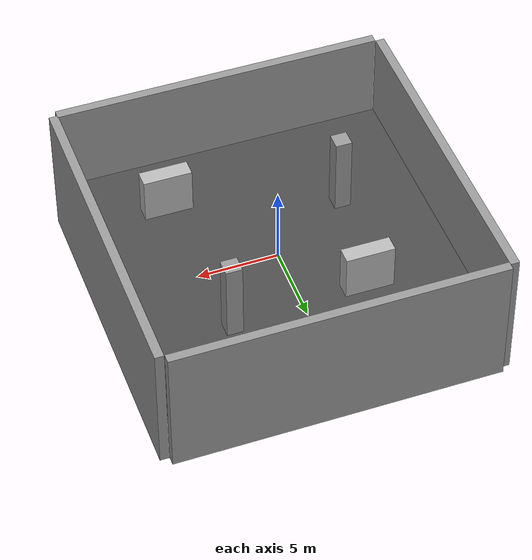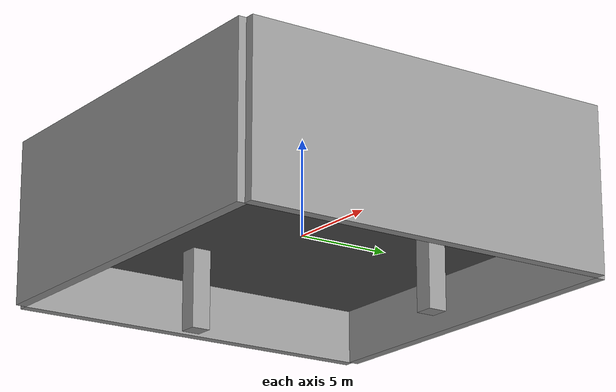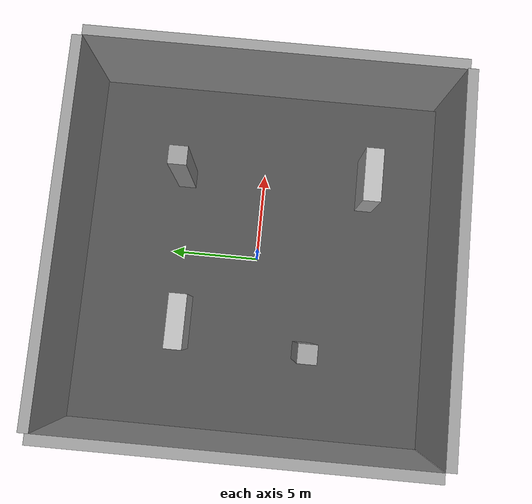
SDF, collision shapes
<?xml version='1.0'?>
<sdf version='1.6'>
  <model name='DQN_world_1'>
    <link name='link'>
      <pose frame=''>0 0 0 0 -0 0</pose>
      <self_collide>0</self_collide>
      <kinematic>0</kinematic>
      <visual name='visual'>
        <cast_shadows>0</cast_shadows>
        <geometry>
          <box>
            <size>20 20 0.1</size>
          </box>
        </geometry>
        <material>
          <script>
            <uri>model://asphalt_plane/materials/scripts</uri>
            <uri>model://asphalt_plane/materials/textures</uri>
            <name>vrc/asphalt</name>
          </script>
          <ambient>0.5 0.5 0.5 1</ambient>
          <diffuse>0.5 0.5 0.5 1</diffuse>
          <specular>0.2 0.2 0.2 1</specular>
          <emissive>0 0 0 1</emissive>
        </material>
        <pose frame=''>0 0 0 0 -0 0</pose>
        <transparency>0</transparency>
      </visual>
      <collision name='collision'>
        <laser_retro>0</laser_retro>
        <max_contacts>10</max_contacts>
        <pose frame=''>0 0 0 0 -0 0</pose>
        <geometry>
          <box>
            <size>20 20 0.1</size>
          </box>
        </geometry>
        <surface>
          <friction>
            <ode>
              <mu>1</mu>
              <mu2>1</mu2>
              <fdir1>0 0 0</fdir1>
              <slip1>0</slip1>
              <slip2>0</slip2>
            </ode>
            <torsional>
              <coefficient>1</coefficient>
              <patch_radius>0</patch_radius>
              <surface_radius>0</surface_radius>
              <use_patch_radius>1</use_patch_radius>
              <ode>
                <slip>0</slip>
              </ode>
            </torsional>
          </friction>
          <bounce>
            <restitution_coefficient>0</restitution_coefficient>
            <threshold>1e+06</threshold>
          </bounce>
          <contact>
            <collide_without_contact>0</collide_without_contact>
            <collide_without_contact_bitmask>1</collide_without_contact_bitmask>
            <collide_bitmask>1</collide_bitmask>
            <ode>
              <soft_cfm>0</soft_cfm>
              <soft_erp>0.2</soft_erp>
              <kp>1e+13</kp>
              <kd>1</kd>
              <max_vel>0.01</max_vel>
              <min_depth>0</min_depth>
            </ode>
            <bullet>
              <split_impulse>1</split_impulse>
              <split_impulse_penetration_threshold>-0.01</split_impulse_penetration_threshold>
              <soft_cfm>0</soft_cfm>
              <soft_erp>0.2</soft_erp>
              <kp>1e+13</kp>
              <kd>1</kd>
            </bullet>
          </contact>
        </surface>
      </collision>
    </link>
    <link name='link_0'>
      <pose frame=''>4.42205 4.53667 0.5 0 -0 0</pose>
      <inertial>
        <mass>9.33899</mass>
        <inertia>
          <ixx>68.6547</ixx>
          <ixy>0</ixy>
          <ixz>0</ixz>
          <iyy>68.6547</iyy>
          <iyz>0</iyz>
          <izz>1.5565</izz>
        </inertia>
        <pose frame=''>0 0 0 0 -0 0</pose>
      </inertial>
      <gravity>1</gravity>
      <self_collide>0</self_collide>
      <kinematic>0</kinematic>
      <visual name='visual'>
        <pose frame=''>0 0 0 0 -0 0</pose>
        <geometry>
          <box>
            <size>1 1 9.33898</size>
          </box>
        </geometry>
        <material>
          <lighting>1</lighting>
          <script>
            <uri>file://media/materials/scripts/gazebo.material</uri>
            <name>Gazebo/Grey</name>
          </script>
          <ambient>0.3 0.3 0.3 1</ambient>
          <diffuse>0.7 0.7 0.7 1</diffuse>
          <specular>0.01 0.01 0.01 1</specular>
          <emissive>0 0 0 1</emissive>
          <shader type='vertex'>
            <normal_map>__default__</normal_map>
          </shader>
        </material>
        <cast_shadows>1</cast_shadows>
        <transparency>0</transparency>
      </visual>
      <collision name='collision'>
        <laser_retro>0</laser_retro>
        <max_contacts>10</max_contacts>
        <pose frame=''>0 0 0 0 -0 0</pose>
        <geometry>
          <box>
            <size>1 1 9.33898</size>
          </box>
        </geometry>
        <surface>
          <friction>
            <ode>
              <mu>1</mu>
              <mu2>1</mu2>
              <fdir1>0 0 0</fdir1>
              <slip1>0</slip1>
              <slip2>0</slip2>
            </ode>
            <torsional>
              <coefficient>1</coefficient>
              <patch_radius>0</patch_radius>
              <surface_radius>0</surface_radius>
              <use_patch_radius>1</use_patch_radius>
              <ode>
                <slip>0</slip>
              </ode>
            </torsional>
          </friction>
          <bounce>
            <restitution_coefficient>0</restitution_coefficient>
            <threshold>1e+06</threshold>
          </bounce>
          <contact>
            <collide_without_contact>0</collide_without_contact>
            <collide_without_contact_bitmask>1</collide_without_contact_bitmask>
            <collide_bitmask>1</collide_bitmask>
            <ode>
              <soft_cfm>0</soft_cfm>
              <soft_erp>0.2</soft_erp>
              <kp>1e+13</kp>
              <kd>1</kd>
              <max_vel>0.01</max_vel>
              <min_depth>0</min_depth>
            </ode>
            <bullet>
              <split_impulse>1</split_impulse>
              <split_impulse_penetration_threshold>-0.01</split_impulse_penetration_threshold>
              <soft_cfm>0</soft_cfm>
              <soft_erp>0.2</soft_erp>
              <kp>1e+13</kp>
              <kd>1</kd>
            </bullet>
          </contact>
        </surface>
      </collision>
    </link>
    <link name='link_0_clone'>
      <pose frame=''>-5.06208 -2.97464 0.5 0 -0 0</pose>
      <inertial>
        <mass>9.33899</mass>
        <inertia>
          <ixx>68.6547</ixx>
          <ixy>0</ixy>
          <ixz>0</ixz>
          <iyy>68.6547</iyy>
          <iyz>0</iyz>
          <izz>1.5565</izz>
        </inertia>
        <pose frame=''>0 0 0 0 -0 0</pose>
      </inertial>
      <self_collide>0</self_collide>
      <kinematic>0</kinematic>
      <visual name='visual'>
        <pose frame=''>0 0 0 0 -0 0</pose>
        <geometry>
          <box>
            <size>1 1 9.33898</size>
          </box>
        </geometry>
        <material>
          <lighting>1</lighting>
          <script>
            <uri>file://media/materials/scripts/gazebo.material</uri>
            <name>Gazebo/Grey</name>
          </script>
          <ambient>0.3 0.3 0.3 1</ambient>
          <diffuse>0.7 0.7 0.7 1</diffuse>
          <specular>0.01 0.01 0.01 1</specular>
          <emissive>0 0 0 1</emissive>
          <shader type='vertex'>
            <normal_map>__default__</normal_map>
          </shader>
        </material>
        <cast_shadows>1</cast_shadows>
        <transparency>0</transparency>
      </visual>
      <collision name='collision'>
        <laser_retro>0</laser_retro>
        <max_contacts>10</max_contacts>
        <pose frame=''>0 0 0 0 -0 0</pose>
        <geometry>
          <box>
            <size>1 1 9.33898</size>
          </box>
        </geometry>
        <surface>
          <friction>
            <ode>
              <mu>1</mu>
              <mu2>1</mu2>
              <fdir1>0 0 0</fdir1>
              <slip1>0</slip1>
              <slip2>0</slip2>
            </ode>
            <torsional>
              <coefficient>1</coefficient>
              <patch_radius>0</patch_radius>
              <surface_radius>0</surface_radius>
              <use_patch_radius>1</use_patch_radius>
              <ode>
                <slip>0</slip>
              </ode>
            </torsional>
          </friction>
          <bounce>
            <restitution_coefficient>0</restitution_coefficient>
            <threshold>1e+06</threshold>
          </bounce>
          <contact>
            <collide_without_contact>0</collide_without_contact>
            <collide_without_contact_bitmask>1</collide_without_contact_bitmask>
            <collide_bitmask>1</collide_bitmask>
            <ode>
              <soft_cfm>0</soft_cfm>
              <soft_erp>0.2</soft_erp>
              <kp>1e+13</kp>
              <kd>1</kd>
              <max_vel>0.01</max_vel>
              <min_depth>0</min_depth>
            </ode>
            <bullet>
              <split_impulse>1</split_impulse>
              <split_impulse_penetration_threshold>-0.01</split_impulse_penetration_threshold>
              <soft_cfm>0</soft_cfm>
              <soft_erp>0.2</soft_erp>
              <kp>1e+13</kp>
              <kd>1</kd>
            </bullet>
          </contact>
        </surface>
      </collision>
    </link>
    <model name='brick_box_3x1x3'>
      <static>1</static>
      <link name='chassis'>
        <pose frame=''>0 0 1.5 0 -0 0</pose>
        <collision name='collision'>
          <geometry>
            <box>
              <size>3 1 3</size>
            </box>
          </geometry>
        </collision>
        <visual name='visual'>
          <geometry>
            <mesh>
              <uri>model://brick_box_3x1x3/meshes/simple_box.dae</uri>
              <scale>3 1 3</scale>
            </mesh>
          </geometry>
          <material>
            <script>
              <uri>model://brick_box_3x1x3/materials/scripts</uri>
              <uri>model://brick_box_3x1x3/materials/textures</uri>
              <name>BrickBox/Diffuse</name>
            </script>
          </material>
        </visual>
      </link>
      <pose frame=''>-4.06208 4.02536 0 0 -0 0</pose>
    </model>
    <model name='brick_box_3x1x3_clone'>
      <static>1</static>
      <link name='chassis'>
        <pose frame=''>0 0 1.5 0 -0 0</pose>
        <collision name='collision'>
          <geometry>
            <box>
              <size>3 1 3</size>
            </box>
          </geometry>
        </collision>
        <visual name='visual'>
          <geometry>
            <mesh>
              <uri>model://brick_box_3x1x3/meshes/simple_box.dae</uri>
              <scale>3 1 3</scale>
            </mesh>
          </geometry>
          <material>
            <script>
              <uri>model://brick_box_3x1x3/materials/scripts</uri>
              <uri>model://brick_box_3x1x3/materials/textures</uri>
              <name>BrickBox/Diffuse</name>
            </script>
          </material>
        </visual>
      </link>
      <pose frame=''>4.93792 -5.97464 0 0 -0 0</pose>
    </model>
    <model name='grey_wall_mw'>
      <link name='link'>
        <pose frame=''>-8.81665 -2.69351 1.4 0 -0 0</pose>
        <inertial>
          <inertia>
            <ixx>nan</ixx>
            <ixy>0</ixy>
            <ixz>0</ixz>
            <iyy>nan</iyy>
            <iyz>0</iyz>
            <izz>nan</izz>
          </inertia>
          <mass>0</mass>
          <pose frame=''>0 0 0 0 -0 0</pose>
        </inertial>
        <self_collide>0</self_collide>
        <kinematic>0</kinematic>
        <visual name='visual'>
          <cast_shadows>0</cast_shadows>
          <geometry>
            <box>
              <size>20.2056 0.556506 8.63552</size>
            </box>
          </geometry>
          <material>
            <script>
              <uri>model://grey_wall/materials/scripts</uri>
              <uri>model://grey_wall/materials/textures</uri>
              <name>vrc/grey_wall</name>
            </script>
            <ambient>1 1 1 1</ambient>
            <diffuse>1 1 1 1</diffuse>
            <specular>0 0 0 1</specular>
            <emissive>0 0 0 1</emissive>
          </material>
          <pose frame=''>0 0 0 0 -0 0</pose>
          <transparency>0</transparency>
        </visual>
        <collision name='collision'>
          <laser_retro>0</laser_retro>
          <max_contacts>10</max_contacts>
          <pose frame=''>0 0 0 0 -0 0</pose>
          <geometry>
            <box>
              <size>20.2056 0.556506 8.63552</size>
            </box>
          </geometry>
          <surface>
            <friction>
              <ode>
                <mu>1</mu>
                <mu2>1</mu2>
                <fdir1>0 0 0</fdir1>
                <slip1>0</slip1>
                <slip2>0</slip2>
              </ode>
              <torsional>
                <coefficient>1</coefficient>
                <patch_radius>0</patch_radius>
                <surface_radius>0</surface_radius>
                <use_patch_radius>1</use_patch_radius>
                <ode>
                  <slip>0</slip>
                </ode>
              </torsional>
            </friction>
            <bounce>
              <restitution_coefficient>0</restitution_coefficient>
              <threshold>1e+06</threshold>
            </bounce>
            <contact>
              <collide_without_contact>0</collide_without_contact>
              <collide_without_contact_bitmask>1</collide_without_contact_bitmask>
              <collide_bitmask>1</collide_bitmask>
              <ode>
                <soft_cfm>0</soft_cfm>
                <soft_erp>0.2</soft_erp>
                <kp>1e+13</kp>
                <kd>1</kd>
                <max_vel>0.01</max_vel>
                <min_depth>0</min_depth>
              </ode>
              <bullet>
                <split_impulse>1</split_impulse>
                <split_impulse_penetration_threshold>-0.01</split_impulse_penetration_threshold>
                <soft_cfm>0</soft_cfm>
                <soft_erp>0.2</soft_erp>
                <kp>1e+13</kp>
                <kd>1</kd>
              </bullet>
            </contact>
          </surface>
        </collision>
        <gravity>1</gravity>
      </link>
      <static>1</static>
      <allow_auto_disable>1</allow_auto_disable>
      <pose frame=''>8.86533 13.0451 0 0 -0 0</pose>
    </model>
    <model name='grey_wall_mw_clone'>
      <link name='link'>
        <pose frame=''>-8.81665 -2.69351 1.4 0 -0 0</pose>
        <inertial>
          <inertia>
            <ixx>nan</ixx>
            <ixy>0</ixy>
            <ixz>0</ixz>
            <iyy>nan</iyy>
            <iyz>0</iyz>
            <izz>nan</izz>
          </inertia>
          <mass>0</mass>
          <pose frame=''>0 0 0 0 -0 0</pose>
        </inertial>
        <self_collide>0</self_collide>
        <kinematic>0</kinematic>
        <visual name='visual'>
          <cast_shadows>0</cast_shadows>
          <geometry>
            <box>
              <size>20.2056 0.556506 8.63552</size>
            </box>
          </geometry>
          <material>
            <script>
              <uri>model://grey_wall/materials/scripts</uri>
              <uri>model://grey_wall/materials/textures</uri>
              <name>vrc/grey_wall</name>
            </script>
            <ambient>1 1 1 1</ambient>
            <diffuse>1 1 1 1</diffuse>
            <specular>0 0 0 1</specular>
            <emissive>0 0 0 1</emissive>
          </material>
          <pose frame=''>0 0 0 0 -0 0</pose>
          <transparency>0</transparency>
        </visual>
        <collision name='collision'>
          <laser_retro>0</laser_retro>
          <max_contacts>10</max_contacts>
          <pose frame=''>0 0 0 0 -0 0</pose>
          <geometry>
            <box>
              <size>20.2056 0.556506 8.63552</size>
            </box>
          </geometry>
          <surface>
            <friction>
              <ode>
                <mu>1</mu>
                <mu2>1</mu2>
                <fdir1>0 0 0</fdir1>
                <slip1>0</slip1>
                <slip2>0</slip2>
              </ode>
              <torsional>
                <coefficient>1</coefficient>
                <patch_radius>0</patch_radius>
                <surface_radius>0</surface_radius>
                <use_patch_radius>1</use_patch_radius>
                <ode>
                  <slip>0</slip>
                </ode>
              </torsional>
            </friction>
            <bounce>
              <restitution_coefficient>0</restitution_coefficient>
              <threshold>1e+06</threshold>
            </bounce>
            <contact>
              <collide_without_contact>0</collide_without_contact>
              <collide_without_contact_bitmask>1</collide_without_contact_bitmask>
              <collide_bitmask>1</collide_bitmask>
              <ode>
                <soft_cfm>0</soft_cfm>
                <soft_erp>0.2</soft_erp>
                <kp>1e+13</kp>
                <kd>1</kd>
                <max_vel>0.01</max_vel>
                <min_depth>0</min_depth>
              </ode>
              <bullet>
                <split_impulse>1</split_impulse>
                <split_impulse_penetration_threshold>-0.01</split_impulse_penetration_threshold>
                <soft_cfm>0</soft_cfm>
                <soft_erp>0.2</soft_erp>
                <kp>1e+13</kp>
                <kd>1</kd>
              </bullet>
            </contact>
          </surface>
        </collision>
        <gravity>1</gravity>
      </link>
      <static>1</static>
      <allow_auto_disable>1</allow_auto_disable>
      <pose frame=''>8.94987 -7.52388 0 0 -0 0</pose>
    </model>
    <model name='grey_wall_mw_clone_0'>
      <link name='link'>
        <pose frame=''>-8.81665 -2.69351 1.4 0 -0 0</pose>
        <inertial>
          <inertia>
            <ixx>nan</ixx>
            <ixy>0</ixy>
            <ixz>0</ixz>
            <iyy>nan</iyy>
            <iyz>0</iyz>
            <izz>nan</izz>
          </inertia>
          <mass>0</mass>
          <pose frame=''>0 0 0 0 -0 0</pose>
        </inertial>
        <self_collide>0</self_collide>
        <kinematic>0</kinematic>
        <visual name='visual'>
          <cast_shadows>0</cast_shadows>
          <geometry>
            <box>
              <size>20.2056 0.556506 8.63552</size>
            </box>
          </geometry>
          <material>
            <script>
              <uri>model://grey_wall/materials/scripts</uri>
              <uri>model://grey_wall/materials/textures</uri>
              <name>vrc/grey_wall</name>
            </script>
            <ambient>1 1 1 1</ambient>
            <diffuse>1 1 1 1</diffuse>
            <specular>0 0 0 1</specular>
            <emissive>0 0 0 1</emissive>
          </material>
          <pose frame=''>0 0 0 0 -0 0</pose>
          <transparency>0</transparency>
        </visual>
        <collision name='collision'>
          <laser_retro>0</laser_retro>
          <max_contacts>10</max_contacts>
          <pose frame=''>0 0 0 0 -0 0</pose>
          <geometry>
            <box>
              <size>20.2056 0.556506 8.63552</size>
            </box>
          </geometry>
          <surface>
            <friction>
              <ode>
                <mu>1</mu>
                <mu2>1</mu2>
                <fdir1>0 0 0</fdir1>
                <slip1>0</slip1>
                <slip2>0</slip2>
              </ode>
              <torsional>
                <coefficient>1</coefficient>
                <patch_radius>0</patch_radius>
                <surface_radius>0</surface_radius>
                <use_patch_radius>1</use_patch_radius>
                <ode>
                  <slip>0</slip>
                </ode>
              </torsional>
            </friction>
            <bounce>
              <restitution_coefficient>0</restitution_coefficient>
              <threshold>1e+06</threshold>
            </bounce>
            <contact>
              <collide_without_contact>0</collide_without_contact>
              <collide_without_contact_bitmask>1</collide_without_contact_bitmask>
              <collide_bitmask>1</collide_bitmask>
              <ode>
                <soft_cfm>0</soft_cfm>
                <soft_erp>0.2</soft_erp>
                <kp>1e+13</kp>
                <kd>1</kd>
                <max_vel>0.01</max_vel>
                <min_depth>0</min_depth>
              </ode>
              <bullet>
                <split_impulse>1</split_impulse>
                <split_impulse_penetration_threshold>-0.01</split_impulse_penetration_threshold>
                <soft_cfm>0</soft_cfm>
                <soft_erp>0.2</soft_erp>
                <kp>1e+13</kp>
                <kd>1</kd>
              </bullet>
            </contact>
          </surface>
        </collision>
        <gravity>1</gravity>
      </link>
      <static>1</static>
      <allow_auto_disable>1</allow_auto_disable>
      <pose frame=''>-7.57506 -8.63828 0 0 0 -1.5677</pose>
    </model>
    <model name='grey_wall_mw_clone_1'>
      <link name='link'>
        <pose frame=''>-8.81665 -2.69351 1.4 0 -0 0</pose>
        <inertial>
          <inertia>
            <ixx>nan</ixx>
            <ixy>0</ixy>
            <ixz>0</ixz>
            <iyy>nan</iyy>
            <iyz>0</iyz>
            <izz>nan</izz>
          </inertia>
          <mass>0</mass>
          <pose frame=''>0 0 0 0 -0 0</pose>
        </inertial>
        <self_collide>0</self_collide>
        <kinematic>0</kinematic>
        <visual name='visual'>
          <cast_shadows>0</cast_shadows>
          <geometry>
            <box>
              <size>20.2056 0.556506 8.63552</size>
            </box>
          </geometry>
          <material>
            <script>
              <uri>model://grey_wall/materials/scripts</uri>
              <uri>model://grey_wall/materials/textures</uri>
              <name>vrc/grey_wall</name>
            </script>
            <ambient>1 1 1 1</ambient>
            <diffuse>1 1 1 1</diffuse>
            <specular>0 0 0 1</specular>
            <emissive>0 0 0 1</emissive>
          </material>
          <pose frame=''>0 0 0 0 -0 0</pose>
          <transparency>0</transparency>
        </visual>
        <collision name='collision'>
          <laser_retro>0</laser_retro>
          <max_contacts>10</max_contacts>
          <pose frame=''>0 0 0 0 -0 0</pose>
          <geometry>
            <box>
              <size>20.2056 0.556506 8.63552</size>
            </box>
          </geometry>
          <surface>
            <friction>
              <ode>
                <mu>1</mu>
                <mu2>1</mu2>
                <fdir1>0 0 0</fdir1>
                <slip1>0</slip1>
                <slip2>0</slip2>
              </ode>
              <torsional>
                <coefficient>1</coefficient>
                <patch_radius>0</patch_radius>
                <surface_radius>0</surface_radius>
                <use_patch_radius>1</use_patch_radius>
                <ode>
                  <slip>0</slip>
                </ode>
              </torsional>
            </friction>
            <bounce>
              <restitution_coefficient>0</restitution_coefficient>
              <threshold>1e+06</threshold>
            </bounce>
            <contact>
              <collide_without_contact>0</collide_without_contact>
              <collide_without_contact_bitmask>1</collide_without_contact_bitmask>
              <collide_bitmask>1</collide_bitmask>
              <ode>
                <soft_cfm>0</soft_cfm>
                <soft_erp>0.2</soft_erp>
                <kp>1e+13</kp>
                <kd>1</kd>
                <max_vel>0.01</max_vel>
                <min_depth>0</min_depth>
              </ode>
              <bullet>
                <split_impulse>1</split_impulse>
                <split_impulse_penetration_threshold>-0.01</split_impulse_penetration_threshold>
                <soft_cfm>0</soft_cfm>
                <soft_erp>0.2</soft_erp>
                <kp>1e+13</kp>
                <kd>1</kd>
              </bullet>
            </contact>
          </surface>
        </collision>
        <gravity>1</gravity>
      </link>
      <static>1</static>
      <allow_auto_disable>1</allow_auto_disable>
      <pose frame=''>13.1547 -8.80175 0 0 0 -1.57043</pose>
    </model>
    <static>1</static>
    <allow_auto_disable>1</allow_auto_disable>
  </model>
</sdf>
